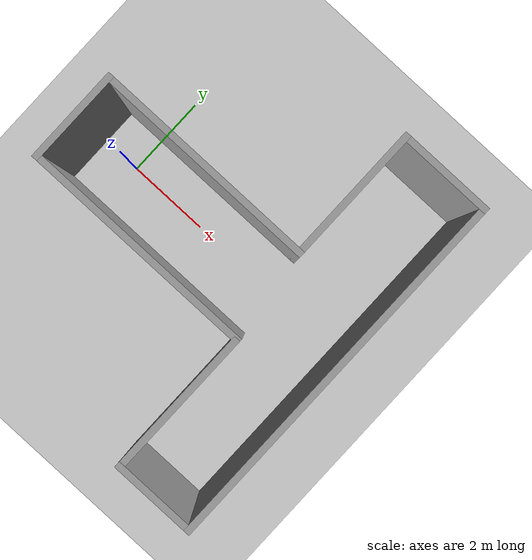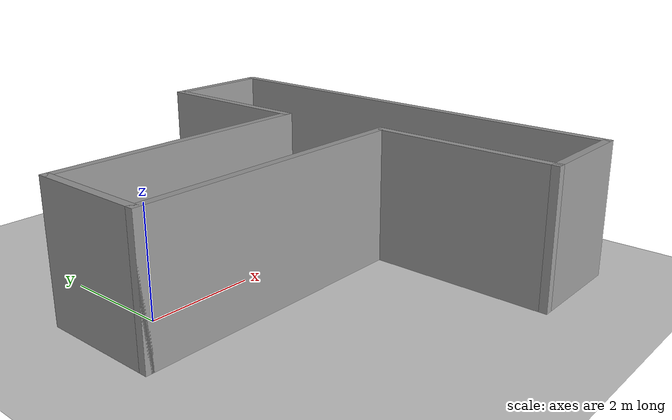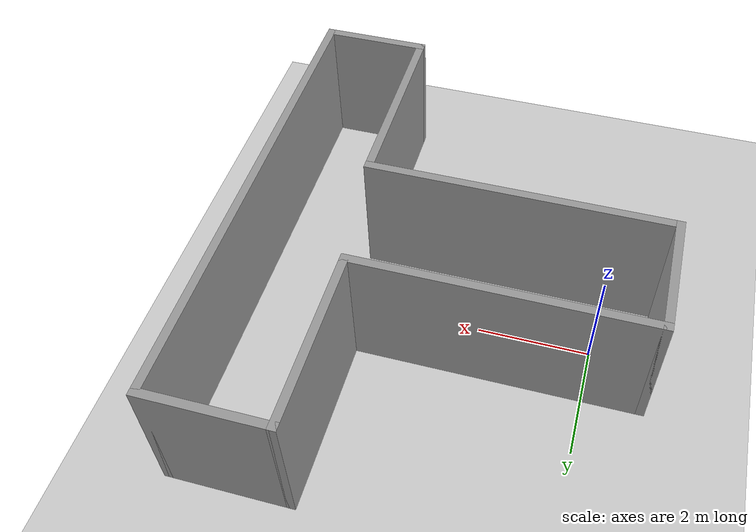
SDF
<sdf version="1.7">
 <world name="lab_world">
  <gravity>0 0 -9.8</gravity>
  <model name="ground_plane">
   <static>1</static>
   <link name="link">
    <collision name="collision">
     <geometry><plane><normal>0 0 1</normal><size>100 100</size></plane></geometry>
     <surface><friction><ode><mu>100</mu><mu2>50</mu2></ode></friction></surface>
    </collision>
    <visual name="visual">
     <cast_shadows>0</cast_shadows>
     <geometry><plane><normal>0 0 1</normal><size>100 100</size></plane></geometry>
     <material>
      <script><uri>file://media/materials/scripts/gazebo.material</uri><name>Gazebo/Grey</name></script>
     </material>
    </visual>
   </link>
  </model>
  <light name="sun" type="directional">
   <pose>0 0 10 0 -0 0</pose>
   <diffuse>0.8 0.8 0.8 1</diffuse>
   <specular>0.2 0.2 0.2 1</specular>
   <attenuation>
    <range>1000</range>
    <constant>0.9</constant>
    <linear>0.01</linear>
    <quadratic>0.001</quadratic>
   </attenuation>
   <direction>-0.5 0.1 -0.9</direction>
   <spot><inner_angle>0</inner_angle><outer_angle>0</outer_angle><falloff>0</falloff></spot>
  </light>
  <magnetic_field>6e-06 2.3e-05 -4.2e-05</magnetic_field>
  <atmosphere type="adiabatic"/>
  <physics type="ode">
   <max_step_size>0.001</max_step_size>
   <real_time_factor>1</real_time_factor>
   <real_time_update_rate>1000</real_time_update_rate>
  </physics>
  <scene><ambient>0.4 0.4 0.4 1</ambient><background>0.7 0.7 0.7 1</background><shadows>1</shadows></scene>
  <spherical_coordinates>
   <surface_model>EARTH_WGS84</surface_model>
   <latitude_deg>0</latitude_deg>
   <longitude_deg>0</longitude_deg>
   <elevation>0</elevation>
   <heading_deg>0</heading_deg>
  </spherical_coordinates>
  <model name="place2">
   <pose>2.58743 -0.282418 0 0 -0 0</pose>
   <link name="Wall_25">
    <collision name="Wall_25_Collision">
     <geometry><box><size>2.25 0.15 2.5</size></box></geometry>
     <pose>0 0 1.25 0 -0 0</pose>
    </collision>
    <visual name="Wall_25_Visual">
     <pose>0 0 1.25 0 -0 0</pose>
     <geometry><box><size>2.25 0.15 2.5</size></box></geometry>
     <material>
      <script><uri>file://media/materials/scripts/gazebo.material</uri><name>Gazebo/Grey</name></script>
      <ambient>1 1 1 1</ambient>
     </material>
     <meta><layer>0</layer></meta>
    </visual>
    <pose>-3.6 0.15 0 0 -0 1.5708</pose>
   </link>
   <link name="Wall_26">
    <collision name="Wall_26_Collision">
     <geometry><box><size>5.25 0.15 2.5</size></box></geometry>
     <pose>0 0 1.25 0 -0 0</pose>
    </collision>
    <visual name="Wall_26_Visual">
     <pose>0 0 1.25 0 -0 0</pose>
     <geometry><box><size>5.25 0.15 2.5</size></box></geometry>
     <material>
      <script><uri>file://media/materials/scripts/gazebo.material</uri><name>Gazebo/Grey</name></script>
      <ambient>1 1 1 1</ambient>
     </material>
     <meta><layer>0</layer></meta>
    </visual>
    <pose>-1.05 1.2 0 0 -0 0</pose>
   </link>
   <link name="Wall_27">
    <collision name="Wall_27_Collision">
     <geometry><box><size>3.25 0.15 2.5</size></box></geometry>
     <pose>0 0 1.25 0 -0 0</pose>
    </collision>
    <visual name="Wall_27_Visual">
     <pose>0 0 1.25 0 -0 0</pose>
     <geometry><box><size>3.25 0.15 2.5</size></box></geometry>
     <material>
      <script><uri>file://media/materials/scripts/gazebo.material</uri><name>Gazebo/Grey</name></script>
      <ambient>1 1 1 1</ambient>
     </material>
     <meta><layer>0</layer></meta>
    </visual>
    <pose>1.5 2.75 0 0 -0 1.5708</pose>
   </link>
   <link name="Wall_28">
    <collision name="Wall_28_Collision">
     <geometry><box><size>2.25 0.15 2.5</size></box></geometry>
     <pose>0 0 1.25 0 -0 0</pose>
    </collision>
    <visual name="Wall_28_Visual">
     <pose>0 0 1.25 0 -0 0</pose>
     <geometry><box><size>2.25 0.15 2.5</size></box></geometry>
     <material>
      <script><uri>file://media/materials/scripts/gazebo.material</uri><name>Gazebo/Grey</name></script>
      <ambient>1 1 1 1</ambient>
     </material>
     <meta><layer>0</layer></meta>
    </visual>
    <pose>2.55 4.3 0 0 -0 0</pose>
   </link>
   <link name="Wall_29">
    <collision name="Wall_29_Collision">
     <geometry><box><size>8.75 0.15 2.5</size></box></geometry>
     <pose>0 0 1.25 0 -0 0</pose>
    </collision>
    <visual name="Wall_29_Visual">
     <pose>0 0 1.25 0 -0 0</pose>
     <geometry><box><size>8.75 0.15 2.5</size></box></geometry>
     <material>
      <script><uri>file://media/materials/scripts/gazebo.material</uri><name>Gazebo/Grey</name></script>
      <ambient>1 1 1 1</ambient>
     </material>
     <meta><layer>0</layer></meta>
    </visual>
    <pose>3.6 0 0 0 -0 -1.5708</pose>
   </link>
   <link name="Wall_30">
    <collision name="Wall_30_Collision">
     <geometry><box><size>2 0.15 2.5</size></box></geometry>
     <pose>0 0 1.25 0 -0 0</pose>
    </collision>
    <visual name="Wall_30_Visual">
     <pose>0 0 1.25 0 -0 0</pose>
     <geometry><box><size>2 0.15 2.5</size></box></geometry>
     <material>
      <script><uri>file://media/materials/scripts/gazebo.material</uri><name>Gazebo/Grey</name></script>
      <ambient>1 1 1 1</ambient>
     </material>
     <meta><layer>0</layer></meta>
    </visual>
    <pose>2.675 -4.3 0 0 -0 3.14159</pose>
   </link>
   <link name="Wall_31">
    <collision name="Wall_31_Collision">
     <geometry><box><size>3.5 0.15 2.5</size></box></geometry>
     <pose>0 0 1.25 0 -0 0</pose>
    </collision>
    <visual name="Wall_31_Visual">
     <pose>0 0 1.25 0 -0 0</pose>
     <geometry><box><size>3.5 0.15 2.5</size></box></geometry>
     <material>
      <script><uri>file://media/materials/scripts/gazebo.material</uri><name>Gazebo/Grey</name></script>
      <ambient>1 1 1 1</ambient>
     </material>
     <meta><layer>0</layer></meta>
    </visual>
    <pose>1.75 -2.625 0 0 -0 1.5708</pose>
   </link>
   <link name="Wall_33">
    <collision name="Wall_33_Collision">
     <geometry><box><size>5.5 0.15 2.5</size></box></geometry>
     <pose>0 0 1.25 0 -0 0</pose>
    </collision>
    <visual name="Wall_33_Visual">
     <pose>0 0 1.25 0 -0 0</pose>
     <geometry><box><size>5.5 0.15 2.5</size></box></geometry>
     <material>
      <script><uri>file://media/materials/scripts/gazebo.material</uri><name>Gazebo/Grey</name></script>
      <ambient>1 1 1 1</ambient>
     </material>
     <meta><layer>0</layer></meta>
    </visual>
    <pose>-0.925 -0.9 0 0 -0 0</pose>
   </link>
   <static>1</static>
  </model>
 </world>
</sdf>
